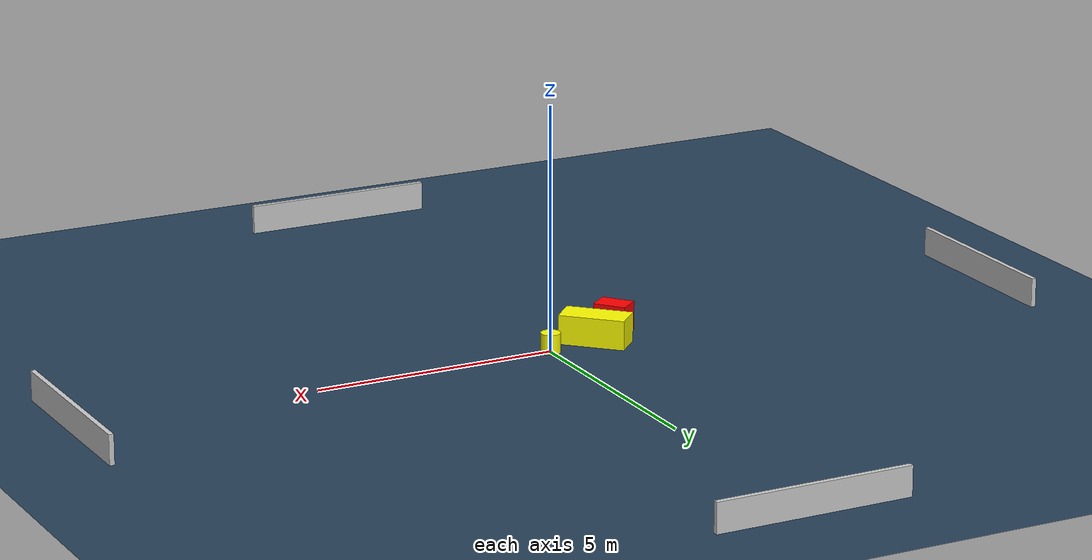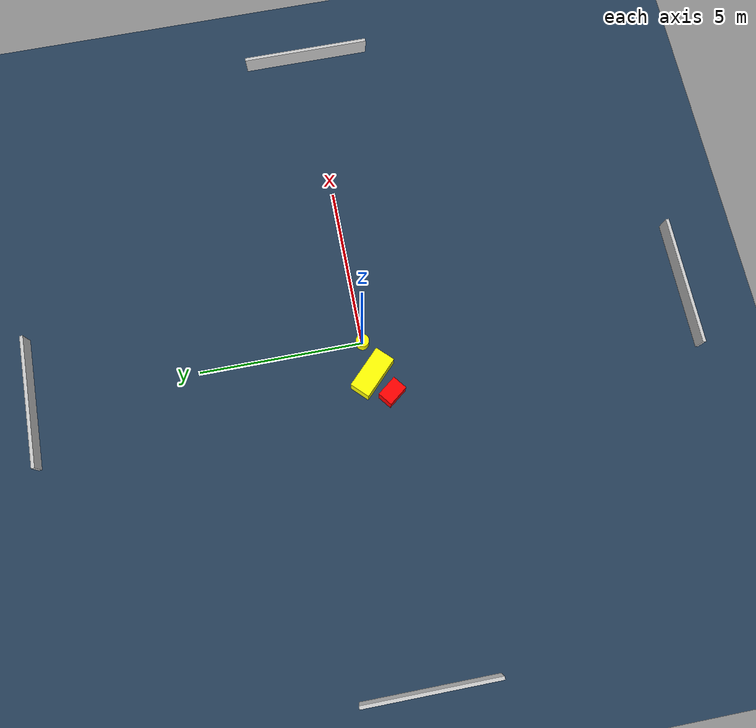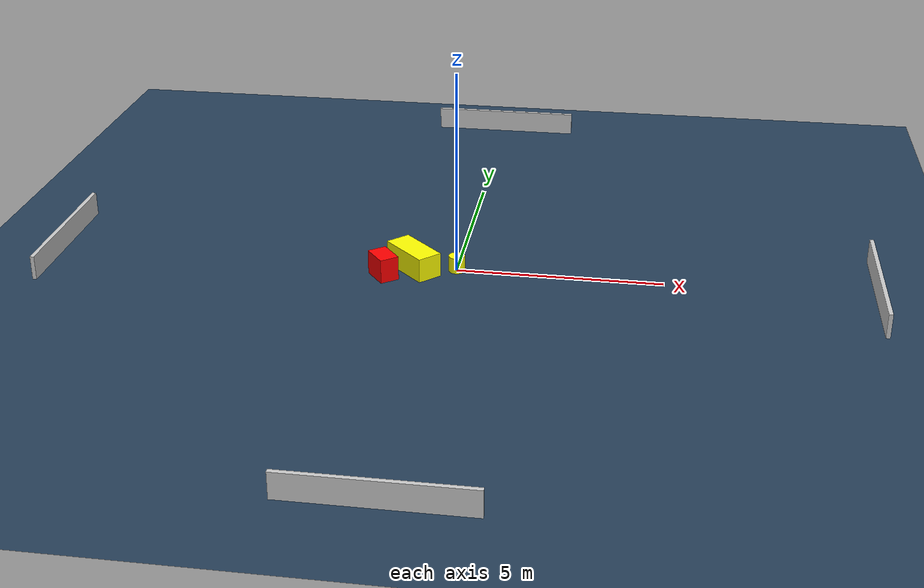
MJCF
<?xml version="1.0" ?>
<mujoco model="generated_environment">
  <option timestep="0.01" integrator="RK4" cone="elliptic"/>
  <default>
    <geom density="1"/>
  </default>
  <asset>
    <texture builtin="gradient" height="3072" name="skybox" rgb1="0.3 0.5 0.7" rgb2="0 0 0" type="skybox" width="512"/>
    <texture builtin="checker" height="300" name="groundplane" rgb1="0.2 0.3 0.4" rgb2="0.1 0.2 0.3" type="2d" width="300"/>
    <material name="groundplane" reflectance="0.2" texrepeat="5 5" texture="groundplane"/>
  </asset>
  <worldbody>
    <light dir="0 0 -1" directional="true" pos="0 0 1.5"/>
    <geom condim="3" friction="0.5 0.005 0.001" material="groundplane" name="floor" pos="0 0 0" size="0 0 0.05" type="plane"/>
    <body name="walls">
      <geom name="wall_1" condim="4" pos="-10.0 0.0 0.3" rgba="0.800000011920929 0.800000011920929 0.800000011920929 1.0" size="0.05 2.0 0.3" type="box"/>
      <geom name="wall_2" condim="4" pos="10.0 0.0 0.3" rgba="0.800000011920929 0.800000011920929 0.800000011920929 1.0" size="0.05 2.0 0.3" type="box"/>
      <geom name="wall_3" condim="4" pos="0.0 -10.0 0.3" rgba="0.800000011920929 0.800000011920929 0.800000011920929 1.0" size="2.0 0.05 0.3" type="box"/>
      <geom name="wall_4" condim="4" pos="0.0 10.0 0.3" rgba="0.800000011920929 0.800000011920929 0.800000011920929 1.0" size="2.0 0.05 0.3" type="box"/>
    </body>
    <body name="robot">
      <joint name="joint_x" type="slide" pos="0 0 0" axis="1 0 0"/>
      <joint name="joint_y" type="slide" pos="0 0 0" axis="0 1 0"/>
      <geom name="robot" type="cylinder" pos="0.0 0.0 0.2" size="0.2 0.2 0.0" mass="5.0" friction="1.0 0.005 0.0001" condim="4" rgba="1.0 1.0 0.0 1.0"/>
    </body>
    <body name="obstacle_1_movable">
      <geom name="obstacle_1_movable" condim="4" pos="-1.0498645393612072 -0.09903173215709422 0.3" euler="0 0 225.17920093246735" friction="0.0 0.005 0.001" rgba="1.0 1.0 0.0 1.0" size="0.31544649658272855 0.6766918712555233 0.3" type="box" mass="0.1"/>
      <joint type="free"/>
    </body>
    <body name="obstacle_2_static">
      <geom name="obstacle_2_static" condim="4" pos="-1.7131406146276091 -0.5709401324884085 0.3" euler="0 0 307.7573430038492" friction="0.0 0.005 0.001" rgba="1.0 0.0 0.0 1.0" size="0.33916675108755995 0.2371988278616452 0.3" type="box"/>
    </body>
  </worldbody>
  <actuator>
    <motor name="actuator_x" joint="joint_x" gear="1" ctrlrange="-1 1"/>
    <motor name="actuator_y" joint="joint_y" gear="1" ctrlrange="-1 1"/>
  </actuator>
</mujoco>
